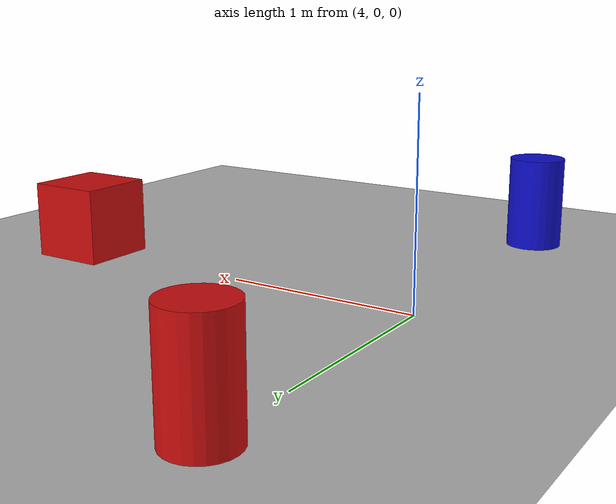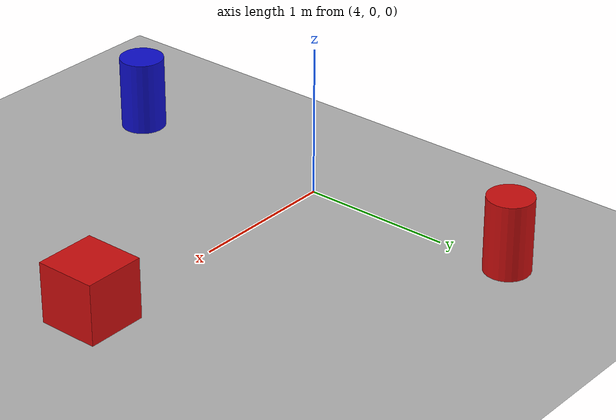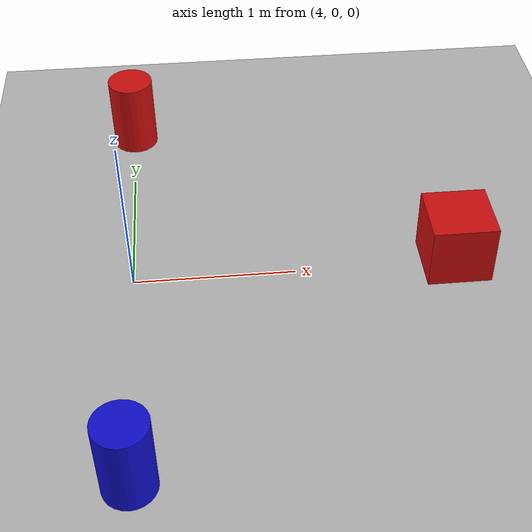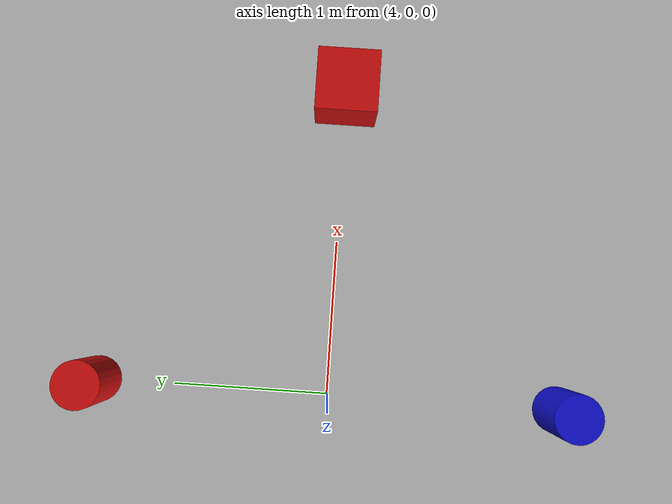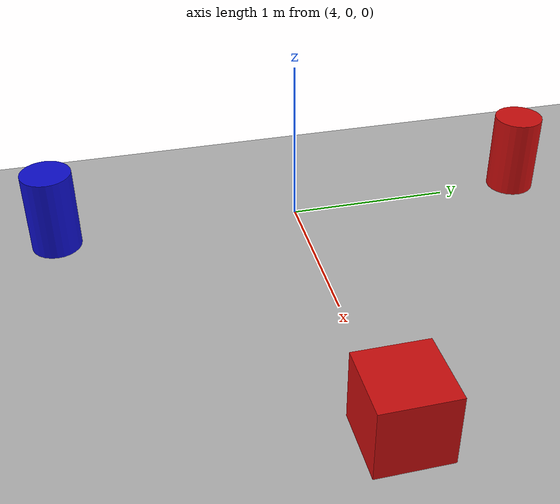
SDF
<?xml version="1.0" ?>
<sdf version="1.9">
  <world name="props_ground">
    <physics name="1ms" type="ignored">
      <max_step_size>0.001</max_step_size>
      <real_time_factor>1.0</real_time_factor>
    </physics>
    <plugin filename="gz-sim-physics-system"
            name="gz::sim::systems::Physics"/>
    <plugin filename="gz-sim-user-commands-system"
            name="gz::sim::systems::UserCommands"/>
    <plugin filename="gz-sim-sensors-system"
            name="gz::sim::systems::Sensors">
      <render_engine>ogre2</render_engine>
    </plugin>
    <plugin filename="gz-sim-scene-broadcaster-system"
            name="gz::sim::systems::SceneBroadcaster"/>

    <light type="directional" name="sun">
      <cast_shadows>true</cast_shadows>
      <pose>0 0 10 0 0 0</pose>
      <diffuse>1 1 1 1</diffuse>
      <specular>0.5 0.5 0.5 1</specular>
      <direction>-0.5 0.1 -0.9</direction>
    </light>

    <model name="ground_plane">
      <static>true</static>
      <link name="link">
        <collision name="collision">
          <geometry>
            <plane><normal>0 0 1</normal><size>200 200</size></plane>
          </geometry>
        </collision>
        <visual name="visual">
          <geometry>
            <plane><normal>0 0 1</normal><size>200 200</size></plane>
          </geometry>
          <material>
            <ambient>0.7 0.7 0.7 1</ambient>
            <diffuse>0.7 0.7 0.7 1</diffuse>
            <specular>0.2 0.2 0.2 1</specular>
          </material>
        </visual>
      </link>
    </model>

    <model name="red_barrel">
      <static>true</static>
      <pose>4 1.5 0.25 0 0 0</pose>
      <link name="link">
        <collision name="collision">
          <geometry><cylinder><radius>0.15</radius><length>0.5</length></cylinder></geometry>
        </collision>
        <visual name="visual">
          <geometry><cylinder><radius>0.15</radius><length>0.5</length></cylinder></geometry>
          <material>
            <ambient>0.8 0.05 0.05 1</ambient>
            <diffuse>0.8 0.05 0.05 1</diffuse>
          </material>
        </visual>
      </link>
    </model>

    <model name="blue_barrel">
      <static>true</static>
      <pose>4 -1.5 0.25 0 0 0</pose>
      <link name="link">
        <collision name="collision">
          <geometry><cylinder><radius>0.15</radius><length>0.5</length></cylinder></geometry>
        </collision>
        <visual name="visual">
          <geometry><cylinder><radius>0.15</radius><length>0.5</length></cylinder></geometry>
          <material>
            <ambient>0.05 0.05 0.8 1</ambient>
            <diffuse>0.05 0.05 0.8 1</diffuse>
          </material>
        </visual>
      </link>
    </model>

    <model name="red_crate">
      <static>true</static>
      <pose>6 0 0.2 0 0 0</pose>
      <link name="link">
        <collision name="collision">
          <geometry><box><size>0.4 0.4 0.4</size></box></geometry>
        </collision>
        <visual name="visual">
          <geometry><box><size>0.4 0.4 0.4</size></box></geometry>
          <material>
            <ambient>0.8 0.05 0.05 1</ambient>
            <diffuse>0.8 0.05 0.05 1</diffuse>
          </material>
        </visual>
      </link>
    </model>

  </world>
</sdf>
